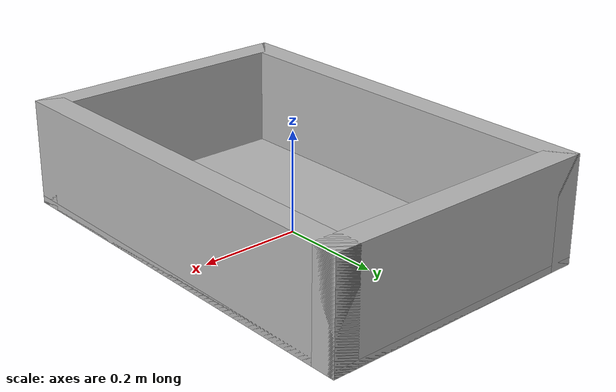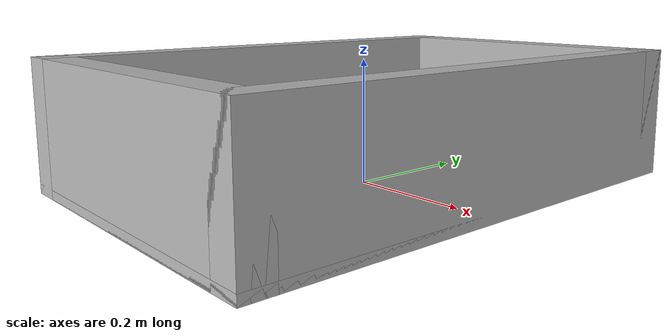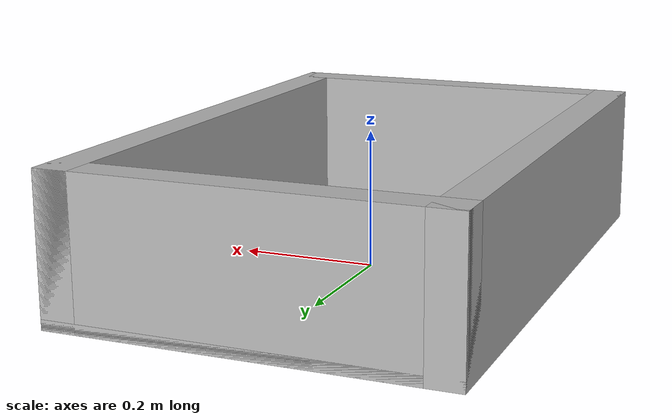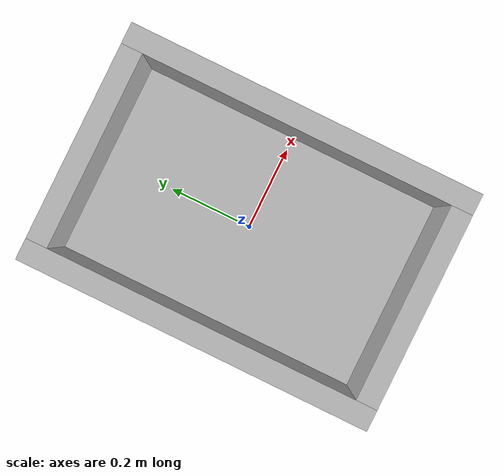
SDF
<?xml version="1.0"?>
<!-- Copied and modified from drake examples/manipulation_station/models.
     Shooting for 22-deep-by-33in-wide-by-10in-deep (i.e. .56 x .83 x .21) dimension.-->
<sdf version="1.7">
  <model name="bin_model">
    <!--
    Axes:
      +X - Pointing towards front (slope)
      +Y - Pointing to left side
      +Z - Up
    Origin:
      (0, 0, 0) at the center bottom of the bin
    -->
    <link name="bin_base">
      <inertial>
        <mass>18.70</mass>
        <inertia>
          <ixx>0.79</ixx>
          <ixy>0</ixy>
          <ixz>0</ixz>
          <iyy>0.53</iyy>
          <iyz>0</iyz>
          <izz>1.2</izz>
        </inertia>
      </inertial>
      <visual name="visual">
        <pose>0.255 0 0.105 0 0 0</pose>
        <geometry>
          <box>
            <size>0.05 0.83 0.21</size>
          </box>
        </geometry>
      </visual>
      <collision name="front">
        <pose>0.255 0 0.105 0 0 0</pose>
        <geometry>
          <box>
            <size>0.05 0.83 0.21</size>
          </box>
        </geometry>
      </collision>
      <visual name="back">
        <pose>-0.255 0 0.105 0 0 0</pose>
        <geometry>
          <box>
            <size>0.05 0.83 0.21</size>
          </box>
        </geometry>
      </visual>
      <collision name="back">
        <pose>-0.255 0 0.105 0 0 0</pose>
        <geometry>
          <box>
            <size>0.05 0.83 0.21</size>
          </box>
        </geometry>
      </collision>
      <visual name="left">
        <pose>0 0.39 0.105 0 0 0</pose>
        <geometry>
          <box>
            <size>0.56 0.05 0.21</size>
          </box>
        </geometry>
      </visual>
      <collision name="left">
        <pose>0 0.39 0.105 0 0 0</pose>
        <geometry>
          <box>
            <size>0.56 0.05 0.21</size>
          </box>
        </geometry>
      </collision>
      <visual name="right">
        <pose>0 -0.39 0.105 0 0 0</pose>
        <geometry>
          <box>
            <size>0.56 0.05 0.21</size>
          </box>
        </geometry>
      </visual>
      <collision name="right">
        <pose>0 -0.39 0.105 0 0 0</pose>
        <geometry>
          <box>
            <size>0.56 0.05 0.21</size>
          </box>
        </geometry>
      </collision>
      <visual name="bottom">
        <pose>0.0 0.0 0.0075 0 0 0</pose>
        <geometry>
          <box>
            <size>0.56 0.83 0.015</size>
          </box>
        </geometry>
      </visual>
      <collision name="bottom">
        <pose>0.0 0.0 0.0075 0 0 0</pose>
        <geometry>
          <box>
            <size>0.56 0.83 0.015</size>
          </box>
        </geometry>
      </collision>
    </link>
  </model>
</sdf>
